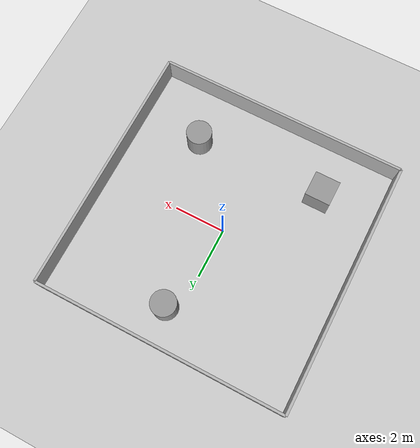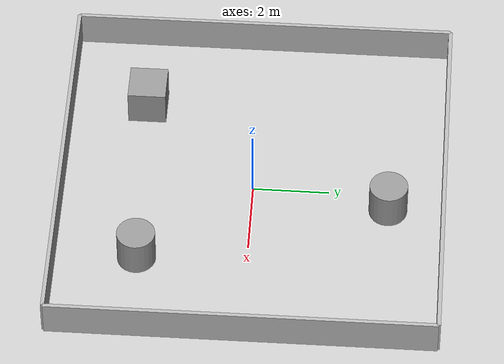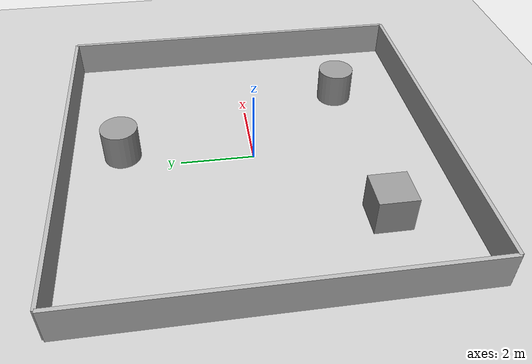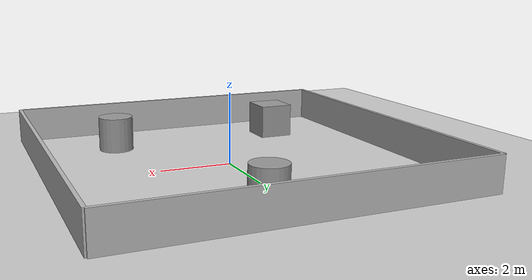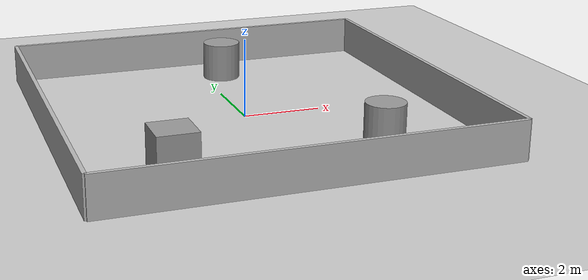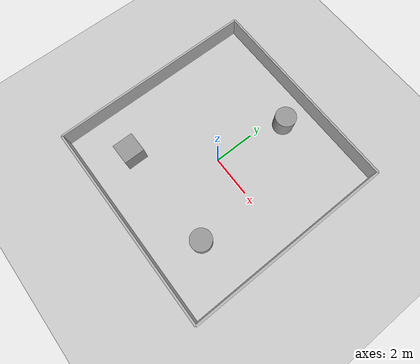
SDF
<sdf version="1.7">
 <world name="default">
  <light name="sun" type="directional">
   <pose>0 0 10 0 -0 0</pose>
   <diffuse>0.8 0.8 0.8 1</diffuse>
   <specular>0.2 0.2 0.2 1</specular>
   <attenuation>
    <range>1000</range>
    <constant>0.9</constant>
    <linear>0.01</linear>
    <quadratic>0.001</quadratic>
   </attenuation>
   <direction>-0.5 0.1 -0.9</direction>
   <spot><inner_angle>0</inner_angle><outer_angle>0</outer_angle><falloff>0</falloff></spot>
  </light>
  <model name="ground_plane">
   <static>1</static>
   <link name="link">
    <collision name="collision">
     <geometry><plane><normal>0 0 1</normal><size>100 100</size></plane></geometry>
     <surface><friction><ode><mu>100</mu><mu2>50</mu2></ode></friction></surface>
    </collision>
    <visual name="visual">
     <cast_shadows>0</cast_shadows>
     <geometry><plane><normal>0 0 1</normal><size>100 100</size></plane></geometry>
     <material>
      <script><uri>file://media/materials/scripts/gazebo.material</uri><name>Gazebo/Grey</name></script>
     </material>
    </visual>
   </link>
  </model>
  <model name="wall_front">
   <static>1</static>
   <link name="link">
    <pose>0 5 0.5 0 -0 0</pose>
    <collision name="collision"><geometry><box><size>10 0.1 1</size></box></geometry></collision>
    <visual name="visual"><geometry><box><size>10 0.1 1</size></box></geometry></visual>
   </link>
  </model>
  <model name="wall_back">
   <static>1</static>
   <link name="link">
    <pose>0 -5 0.5 0 -0 0</pose>
    <collision name="collision"><geometry><box><size>10 0.1 1</size></box></geometry></collision>
    <visual name="visual"><geometry><box><size>10 0.1 1</size></box></geometry></visual>
   </link>
  </model>
  <model name="wall_left">
   <static>1</static>
   <link name="link">
    <pose>-5 0 0.5 0 -0 0</pose>
    <collision name="collision"><geometry><box><size>0.1 10 1</size></box></geometry></collision>
    <visual name="visual"><geometry><box><size>0.1 10 1</size></box></geometry></visual>
   </link>
  </model>
  <model name="wall_right">
   <static>1</static>
   <link name="link">
    <pose>5 0 0.5 0 -0 0</pose>
    <collision name="collision"><geometry><box><size>0.1 10 1</size></box></geometry></collision>
    <visual name="visual"><geometry><box><size>0.1 10 1</size></box></geometry></visual>
   </link>
  </model>
  <gravity>0 0 -9.8</gravity>
  <magnetic_field>6e-06 2.3e-05 -4.2e-05</magnetic_field>
  <atmosphere type="adiabatic"/>
  <physics type="ode">
   <max_step_size>0.001</max_step_size>
   <real_time_factor>1</real_time_factor>
   <real_time_update_rate>1000</real_time_update_rate>
  </physics>
  <scene><ambient>0.4 0.4 0.4 1</ambient><background>0.7 0.7 0.7 1</background><shadows>1</shadows></scene>
  <spherical_coordinates>
   <surface_model>EARTH_WGS84</surface_model>
   <latitude_deg>0</latitude_deg>
   <longitude_deg>0</longitude_deg>
   <elevation>0</elevation>
   <heading_deg>0</heading_deg>
  </spherical_coordinates>
  <model name="unit_cylinder">
   <pose>2.5056 -2.84674 0.499998 3e-06 4e-06 -0</pose>
   <link name="link">
    <inertial>
     <mass>1</mass>
     <inertia><ixx>0.145833</ixx><ixy>0</ixy><ixz>0</ixz><iyy>0.145833</iyy><iyz>0</iyz><izz>0.125</izz></inertia>
    </inertial>
    <collision name="collision">
     <geometry><cylinder><radius>0.5</radius><length>1</length></cylinder></geometry>
    </collision>
    <visual name="visual">
     <geometry><cylinder><radius>0.5</radius><length>1</length></cylinder></geometry>
     <material>
      <script><name>Gazebo/Grey</name><uri>file://media/materials/scripts/gazebo.material</uri></script>
     </material>
    </visual>
   </link>
  </model>
  <model name="unit_cylinder_0">
   <pose>0.523058 3.56439 0.499997 3e-06 3e-06 0</pose>
   <link name="link">
    <inertial>
     <mass>1</mass>
     <inertia><ixx>0.145833</ixx><ixy>0</ixy><ixz>0</ixz><iyy>0.145833</iyy><iyz>0</iyz><izz>0.125</izz></inertia>
    </inertial>
    <collision name="collision">
     <geometry><cylinder><radius>0.5</radius><length>1</length></cylinder></geometry>
    </collision>
    <visual name="visual">
     <geometry><cylinder><radius>0.5</radius><length>1</length></cylinder></geometry>
     <material>
      <script><name>Gazebo/Grey</name><uri>file://media/materials/scripts/gazebo.material</uri></script>
     </material>
    </visual>
   </link>
  </model>
  <model name="unit_box">
   <pose>-2.67702 -2.95973 0.5 0 -0 0</pose>
   <link name="link">
    <inertial>
     <mass>1</mass>
     <inertia>
      <ixx>0.166667</ixx>
      <ixy>0</ixy>
      <ixz>0</ixz>
      <iyy>0.166667</iyy>
      <iyz>0</iyz>
      <izz>0.166667</izz>
     </inertia>
    </inertial>
    <collision name="collision"><geometry><box><size>1 1 1</size></box></geometry></collision>
    <visual name="visual">
     <geometry><box><size>1 1 1</size></box></geometry>
     <material>
      <script><name>Gazebo/Grey</name><uri>file://media/materials/scripts/gazebo.material</uri></script>
     </material>
    </visual>
   </link>
  </model>
 </world>
</sdf>
